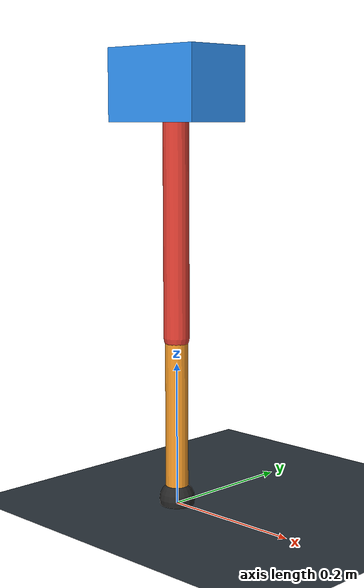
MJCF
<mujoco model="single_axis_two_bar">
  <compiler angle="radian" inertiafromgeom="true"/>
  <option timestep="0.001" integrator="implicitfast" gravity="0 0 -9.81"/>
  <default>
    <joint damping="0.08"/>
    <geom friction="1.2 0.01 0.0001" condim="3"/>
  </default>
  <worldbody>
    <geom name="floor" type="plane" size="5 5 0.1" rgba="0.18 0.22 0.25 1"/>
    <body name="carriage" pos="0 0 0.580531361830064">
      <joint name="pole_slide" type="slide" axis="0 0 1"/>
      <geom name="payload" type="box" size="0.08 0.05 0.05" mass="3.582325403181269" rgba="0.2 0.6 1 1"/>
      <body name="thigh" pos="0 0 0">
        <joint name="hip" type="hinge" axis="0 1 0"/>
        <geom name="thigh_link" type="capsule" fromto="0 0 0 0 0 -0.34399102242612056" size="0.018" mass="0.24509814891893547" rgba="0.9 0.25 0.2 1"/>
        <body name="shank" pos="0 0 -0.34399102242612056">
          <joint name="knee" type="hinge" axis="0 1 0"/>
          <geom name="shank_link" type="capsule" fromto="0 0 0 0 0 -0.22872172172858465" size="0.016" mass="0.16296724902251744" rgba="0.95 0.6 0.15 1"/>
          <geom name="foot" type="sphere" pos="0 0 -0.22872172172858465" size="0.025" mass="0.03" rgba="0.15 0.15 0.15 1"/>
          <site name="toe" pos="0 0 -0.22872172172858465" size="0.008"/>
        </body>
      </body>
    </body>
  </worldbody>
  <actuator>
    <motor name="hip_motor" joint="hip" ctrlrange="-49.947080906258705 49.947080906258705"/>
    <motor name="knee_motor" joint="knee" ctrlrange="-159.71093943418222 159.71093943418222"/>
  </actuator>
</mujoco>
